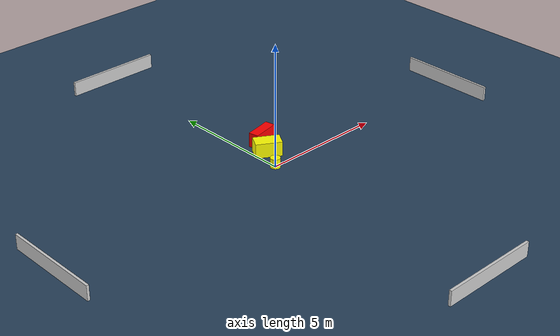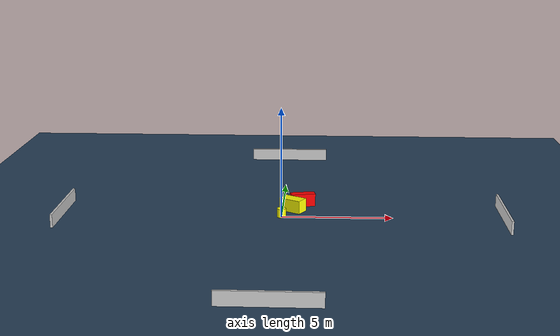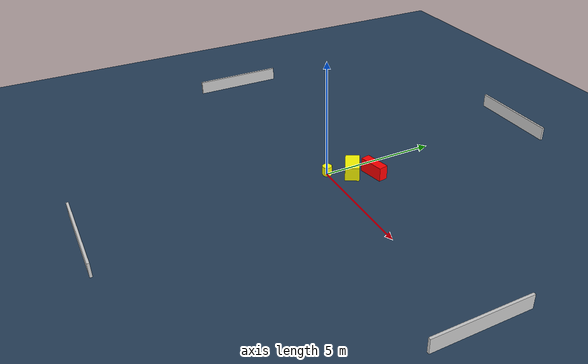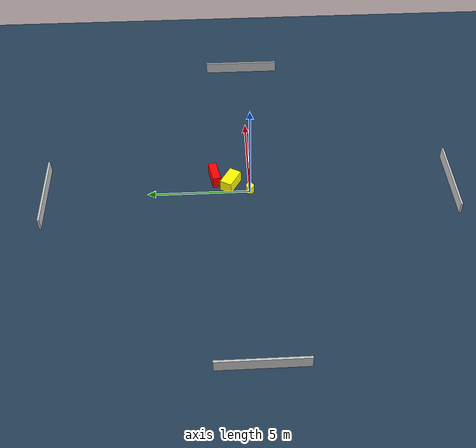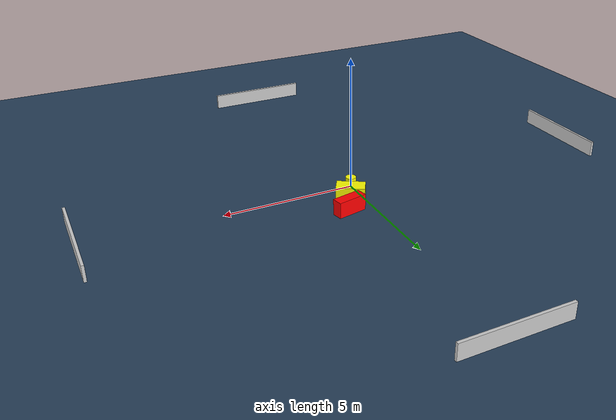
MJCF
<?xml version="1.0" ?>
<mujoco model="generated_environment">
  <option timestep="0.01" integrator="RK4" cone="elliptic"/>
  <default>
    <geom density="1"/>
  </default>
  <asset>
    <texture builtin="gradient" height="3072" name="skybox" rgb1="0.3 0.5 0.7" rgb2="0 0 0" type="skybox" width="512"/>
    <texture builtin="checker" height="300" name="groundplane" rgb1="0.2 0.3 0.4" rgb2="0.1 0.2 0.3" type="2d" width="300"/>
    <material name="groundplane" reflectance="0.2" texrepeat="5 5" texture="groundplane"/>
  </asset>
  <worldbody>
    <light dir="0 0 -1" directional="true" pos="0 0 1.5"/>
    <geom condim="3" friction="0.5 0.005 0.001" material="groundplane" name="floor" pos="0 0 0" size="0 0 0.05" type="plane"/>
    <body name="walls">
      <geom name="wall_1" condim="4" pos="-10.0 0.0 0.3" rgba="0.800000011920929 0.800000011920929 0.800000011920929 1.0" size="0.05 2.0 0.3" type="box"/>
      <geom name="wall_2" condim="4" pos="10.0 0.0 0.3" rgba="0.800000011920929 0.800000011920929 0.800000011920929 1.0" size="0.05 2.0 0.3" type="box"/>
      <geom name="wall_3" condim="4" pos="0.0 -10.0 0.3" rgba="0.800000011920929 0.800000011920929 0.800000011920929 1.0" size="2.0 0.05 0.3" type="box"/>
      <geom name="wall_4" condim="4" pos="0.0 10.0 0.3" rgba="0.800000011920929 0.800000011920929 0.800000011920929 1.0" size="2.0 0.05 0.3" type="box"/>
    </body>
    <body name="robot">
      <joint name="joint_x" type="slide" pos="0 0 0" axis="1 0 0"/>
      <joint name="joint_y" type="slide" pos="0 0 0" axis="0 1 0"/>
      <geom name="robot" type="cylinder" pos="0.0 0.0 0.2" size="0.2 0.2 0.0" mass="5.0" friction="1.0 0.005 0.0001" condim="4" rgba="1.0 1.0 0.0 1.0"/>
    </body>
    <body name="obstacle_1_movable">
      <geom name="obstacle_1_movable" condim="4" pos="0.47787536846463996 0.9332936216080571 0.3" euler="0 0 329.5808566252714" friction="0.0 0.005 0.001" rgba="1.0 1.0 0.0 1.0" size="0.5279944174590425 0.30018317799605787 0.3" type="box" mass="0.1"/>
      <joint type="free"/>
    </body>
    <body name="obstacle_2_static">
      <geom name="obstacle_2_static" condim="4" pos="0.9217234669504895 1.7198573907916068 0.3" euler="0 0 11.771197175048584" friction="0.0 0.005 0.001" rgba="1.0 0.0 0.0 1.0" size="0.5597786229406371 0.2025035515135653 0.3" type="box"/>
    </body>
  </worldbody>
  <actuator>
    <motor name="actuator_x" joint="joint_x" gear="1" ctrlrange="-1 1"/>
    <motor name="actuator_y" joint="joint_y" gear="1" ctrlrange="-1 1"/>
  </actuator>
</mujoco>
